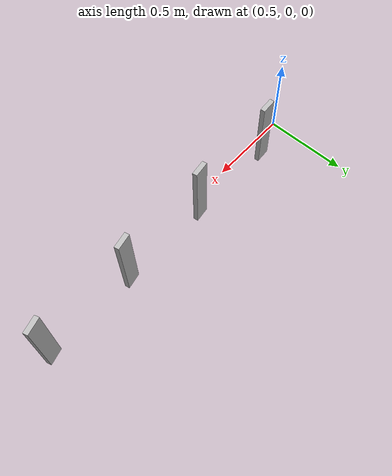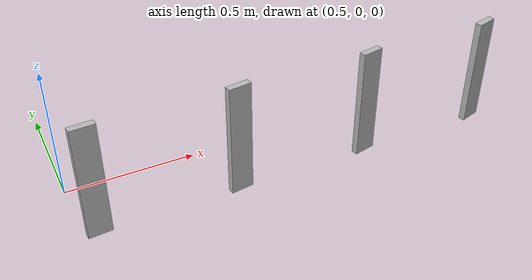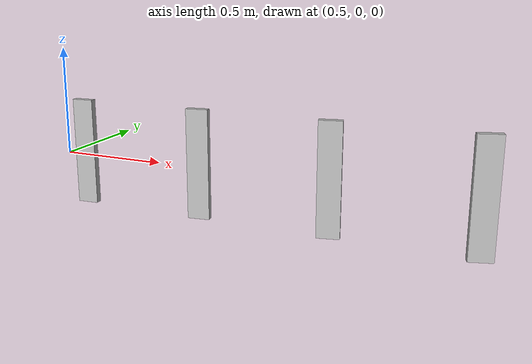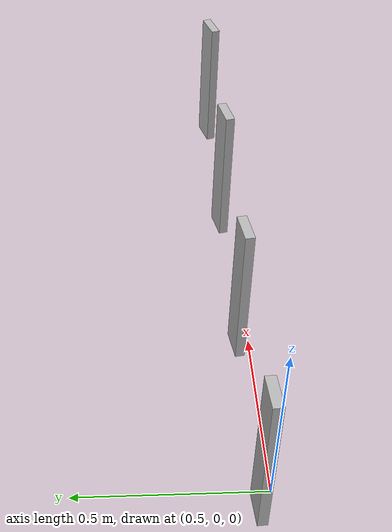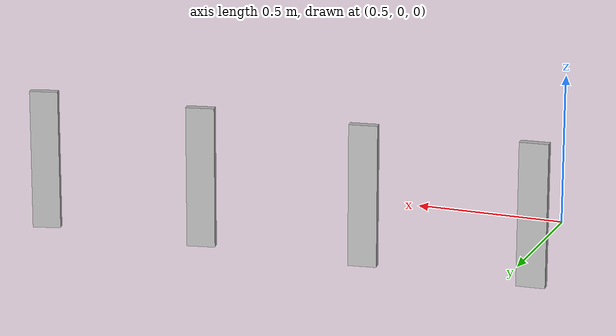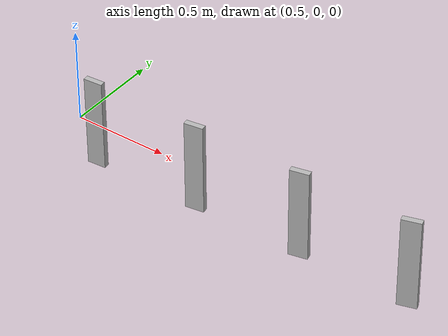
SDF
<?xml version="1.0"?>
<sdf version="1.5"><model name="obstacles"><pose>0.000000e+00 0.000000e+00 1.500000e-02 0.000000e+00 -0.000000e+00 0.000000e+00</pose>
<link name="box"><pose>6.000000e-01 0.000000e+00 0.000000e+00 0.000000e+00 -0.000000e+00 6.981317e-02</pose>
<collision name="collision"><pose>0.000000e+00 0.000000e+00 0.000000e+00 0.000000e+00 -0.000000e+00 0.000000e+00</pose>
<geometry><box><size>1.000000e-01 3.000000e-02 5.000000e-01</size></box></geometry></collision>
<visual name="visual"><pose>0.000000e+00 0.000000e+00 0.000000e+00 0.000000e+00 -0.000000e+00 0.000000e+00</pose>
<geometry><box><size>1.000000e-01 3.000000e-02 5.000000e-01</size></box></geometry></visual>
<inertial><mass>1.000000e-01</mass><inertia><ixx>2.090833e-03</ixx><ixy>0.000000e+00</ixy><ixz>0.000000e+00</ixz><iyy>2.166667e-03</iyy><iyz>0.000000e+00</iyz><izz>9.083333e-05</izz></inertia></inertial></link>
<link name="box"><pose>1.200000e+00 0.000000e+00 0.000000e+00 0.000000e+00 -0.000000e+00 1.396263e-01</pose>
<collision name="collision"><pose>0.000000e+00 0.000000e+00 0.000000e+00 0.000000e+00 -0.000000e+00 0.000000e+00</pose>
<geometry><box><size>1.000000e-01 3.000000e-02 5.000000e-01</size></box></geometry></collision>
<visual name="visual"><pose>0.000000e+00 0.000000e+00 0.000000e+00 0.000000e+00 -0.000000e+00 0.000000e+00</pose>
<geometry><box><size>1.000000e-01 3.000000e-02 5.000000e-01</size></box></geometry></visual>
<inertial><mass>1.000000e-01</mass><inertia><ixx>2.090833e-03</ixx><ixy>0.000000e+00</ixy><ixz>0.000000e+00</ixz><iyy>2.166667e-03</iyy><iyz>0.000000e+00</iyz><izz>9.083333e-05</izz></inertia></inertial></link>
<link name="box"><pose>1.800000e+00 0.000000e+00 0.000000e+00 0.000000e+00 -0.000000e+00 2.094395e-01</pose>
<collision name="collision"><pose>0.000000e+00 0.000000e+00 0.000000e+00 0.000000e+00 -0.000000e+00 0.000000e+00</pose>
<geometry><box><size>1.000000e-01 3.000000e-02 5.000000e-01</size></box></geometry></collision>
<visual name="visual"><pose>0.000000e+00 0.000000e+00 0.000000e+00 0.000000e+00 -0.000000e+00 0.000000e+00</pose>
<geometry><box><size>1.000000e-01 3.000000e-02 5.000000e-01</size></box></geometry></visual>
<inertial><mass>1.000000e-01</mass><inertia><ixx>2.090833e-03</ixx><ixy>0.000000e+00</ixy><ixz>0.000000e+00</ixz><iyy>2.166667e-03</iyy><iyz>0.000000e+00</iyz><izz>9.083333e-05</izz></inertia></inertial></link>
<link name="box"><pose>2.400000e+00 0.000000e+00 0.000000e+00 0.000000e+00 -0.000000e+00 2.792527e-01</pose>
<collision name="collision"><pose>0.000000e+00 0.000000e+00 0.000000e+00 0.000000e+00 -0.000000e+00 0.000000e+00</pose>
<geometry><box><size>1.000000e-01 3.000000e-02 5.000000e-01</size></box></geometry></collision>
<visual name="visual"><pose>0.000000e+00 0.000000e+00 0.000000e+00 0.000000e+00 -0.000000e+00 0.000000e+00</pose>
<geometry><box><size>1.000000e-01 3.000000e-02 5.000000e-01</size></box></geometry></visual>
<inertial><mass>1.000000e-01</mass><inertia><ixx>2.090833e-03</ixx><ixy>0.000000e+00</ixy><ixz>0.000000e+00</ixz><iyy>2.166667e-03</iyy><iyz>0.000000e+00</iyz><izz>9.083333e-05</izz></inertia></inertial></link>
<static>0</static></model></sdf>
